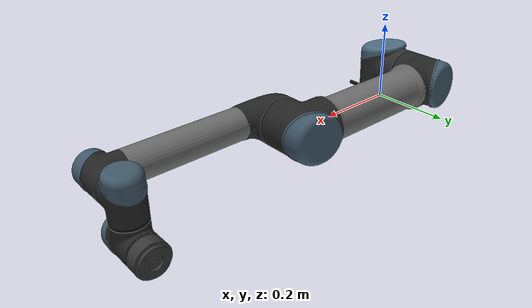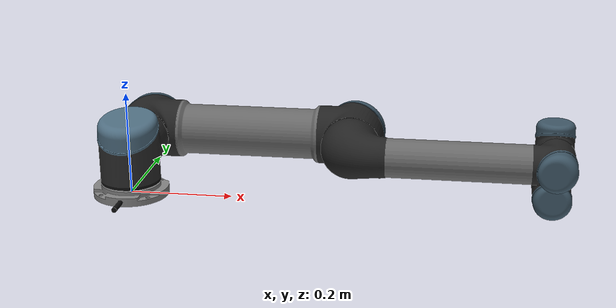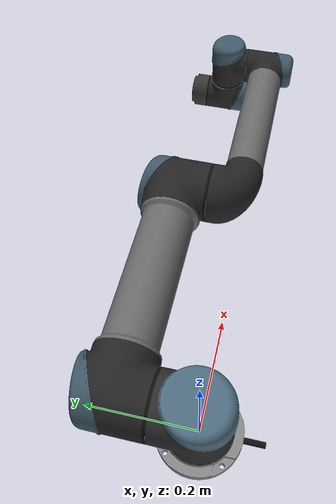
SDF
<sdf version='1.11'>
  <model name='ur'>
    <joint name='base_joint' type='fixed'>
      <pose relative_to='__model__'>0 0 0 0 0 0</pose>
      <parent>world</parent>
      <child>base_link</child>
    </joint>
    <link name='base_link'>
      <pose relative_to='base_joint'>0 0 0 0 0 0</pose>
      <inertial>
        <pose>0 0 0 0 0 0</pose>
        <mass>4</mass>
        <inertia>
          <ixx>0.0044333315599999999</ixx>
          <ixy>0</ixy>
          <ixz>0</ixz>
          <iyy>0.0044333315599999999</iyy>
          <iyz>0</iyz>
          <izz>0.0071999999999999998</izz>
        </inertia>
      </inertial>
      <collision name='base_link_inertia_collision'>
        <pose>0 0 0 0 0 -2.4492935982947059e-16</pose>
        <geometry>
          <mesh>
            <scale>1 1 1</scale>
            <uri>model://ur_description/meshes/ur5/collision/base.stl</uri>
          </mesh>
        </geometry>
      </collision>
      <visual name='base_link_inertia_visual'>
        <pose>0 0 0 0 0 -2.4492935982947059e-16</pose>
        <geometry>
          <mesh>
            <scale>1 1 1</scale>
            <uri>model://ur_description/meshes/ur5/visual/base.dae</uri>
          </mesh>
        </geometry>
      </visual>
    </link>
    <joint name='shoulder_pan_joint' type='revolute'>
      <pose relative_to='base_link'>0 0 0.089159000000000002 0 0 3.1415926535897931</pose>
      <parent>base_link</parent>
      <child>shoulder_link</child>
      <axis>
        <xyz>0 0 1</xyz>
        <limit>
          <lower>-6.2831853071795862</lower>
          <upper>6.2831853071795862</upper>
          <effort>150</effort>
          <velocity>3.1415926535897931</velocity>
        </limit>
        <dynamics>
          <damping>0</damping>
          <friction>0</friction>
          <spring_reference>0</spring_reference>
          <spring_stiffness>0</spring_stiffness>
        </dynamics>
      </axis>
    </joint>
    <link name='shoulder_link'>
      <pose relative_to='shoulder_pan_joint'>0 0 0 0 0 0</pose>
      <inertial>
        <pose>0 -0.0019300000000000001 -0.025610000000000001 0 0 0</pose>
        <mass>3.7000000000000002</mass>
        <inertia>
          <ixx>0.01497235833333333</ixx>
          <ixy>0</ixy>
          <ixz>0</ixz>
          <iyy>0.01497235833333333</iyy>
          <iyz>0</iyz>
          <izz>0.010406250000000001</izz>
        </inertia>
      </inertial>
      <collision name='shoulder_link_collision'>
        <pose>0 0 0 0 0 3.1415926535897931</pose>
        <geometry>
          <mesh>
            <scale>1 1 1</scale>
            <uri>model://ur_description/meshes/ur5/collision/shoulder.stl</uri>
          </mesh>
        </geometry>
      </collision>
      <visual name='shoulder_link_visual'>
        <pose>0 0 0 0 0 3.1415926535897931</pose>
        <geometry>
          <mesh>
            <scale>1 1 1</scale>
            <uri>model://ur_description/meshes/ur5/visual/shoulder.dae</uri>
          </mesh>
        </geometry>
      </visual>
    </link>
    <joint name='shoulder_lift_joint' type='revolute'>
      <pose relative_to='shoulder_link'>0 0 0 1.5707963270000003 0 0</pose>
      <parent>shoulder_link</parent>
      <child>upper_arm_link</child>
      <axis>
        <xyz>0 0 1</xyz>
        <limit>
          <lower>-6.2831853071795862</lower>
          <upper>6.2831853071795862</upper>
          <effort>150</effort>
          <velocity>3.1415926535897931</velocity>
        </limit>
        <dynamics>
          <damping>0</damping>
          <friction>0</friction>
          <spring_reference>0</spring_reference>
          <spring_stiffness>0</spring_stiffness>
        </dynamics>
      </axis>
    </joint>
    <link name='upper_arm_link'>
      <pose relative_to='shoulder_lift_joint'>0 0 0 0 0 0</pose>
      <inertial>
        <pose>-0.21249999999999999 0 0.11336 0 1.5707963267948966 0</pose>
        <mass>8.3930000000000007</mass>
        <inertia>
          <ixx>0.13388583541666671</ixx>
          <ixy>0</ixy>
          <ixz>0</ixz>
          <iyy>0.13388583541666671</iyy>
          <iyz>0</iyz>
          <izz>0.0151074</izz>
        </inertia>
      </inertial>
      <collision name='upper_arm_link_collision'>
        <pose>0 0 0.13585 1.5707963267948959 5.5511151231257827e-17 -1.5707963267948959</pose>
        <geometry>
          <mesh>
            <scale>1 1 1</scale>
            <uri>model://ur_description/meshes/ur5/collision/upperarm.stl</uri>
          </mesh>
        </geometry>
      </collision>
      <visual name='upper_arm_link_visual'>
        <pose>0 0 0.13585 1.5707963267948959 5.5511151231257827e-17 -1.5707963267948959</pose>
        <geometry>
          <mesh>
            <scale>1 1 1</scale>
            <uri>model://ur_description/meshes/ur5/visual/upperarm.dae</uri>
          </mesh>
        </geometry>
      </visual>
    </link>
    <joint name='elbow_joint' type='revolute'>
      <pose relative_to='upper_arm_link'>-0.42499999999999999 0 0 0 0 0</pose>
      <parent>upper_arm_link</parent>
      <child>forearm_link</child>
      <axis>
        <xyz>0 0 1</xyz>
        <limit>
          <lower>-3.1415926535897931</lower>
          <upper>3.1415926535897931</upper>
          <effort>150</effort>
          <velocity>3.1415926535897931</velocity>
        </limit>
        <dynamics>
          <damping>0</damping>
          <friction>0</friction>
          <spring_reference>0</spring_reference>
          <spring_stiffness>0</spring_stiffness>
        </dynamics>
      </axis>
    </joint>
    <link name='forearm_link'>
      <pose relative_to='elbow_joint'>0 0 0 0 0 0</pose>
      <inertial>
        <pose>-0.24224999999999999 0 0.026499999999999999 0 1.5707963267948966 0</pose>
        <mass>2.3300000000000001</mass>
        <inertia>
          <ixx>0.031216803515624999</ixx>
          <ixy>0</ixy>
          <ixz>0</ixz>
          <iyy>0.031216803515624999</iyy>
          <iyz>0</iyz>
          <izz>0.0040949999999999997</izz>
        </inertia>
      </inertial>
      <collision name='forearm_link_collision'>
        <pose>0 0 0.016500000000000001 1.5707963267948959 5.5511151231257827e-17 -1.5707963267948959</pose>
        <geometry>
          <mesh>
            <scale>1 1 1</scale>
            <uri>model://ur_description/meshes/ur5/collision/forearm.stl</uri>
          </mesh>
        </geometry>
      </collision>
      <visual name='forearm_link_visual'>
        <pose>0 0 0.016500000000000001 1.5707963267948959 5.5511151231257827e-17 -1.5707963267948959</pose>
        <geometry>
          <mesh>
            <scale>1 1 1</scale>
            <uri>model://ur_description/meshes/ur5/visual/forearm.dae</uri>
          </mesh>
        </geometry>
      </visual>
    </link>
    <joint name='wrist_1_joint' type='revolute'>
      <pose relative_to='forearm_link'>-0.39224999999999999 0 0.10915 0 0 0</pose>
      <parent>forearm_link</parent>
      <child>wrist_1_link</child>
      <axis>
        <xyz>0 0 1</xyz>
        <limit>
          <lower>-6.2831853071795862</lower>
          <upper>6.2831853071795862</upper>
          <effort>28</effort>
          <velocity>3.1415926535897931</velocity>
        </limit>
        <dynamics>
          <damping>0</damping>
          <friction>0</friction>
          <spring_reference>0</spring_reference>
          <spring_stiffness>0</spring_stiffness>
        </dynamics>
      </axis>
    </joint>
    <link name='wrist_1_link'>
      <pose relative_to='wrist_1_joint'>0 0 0 0 0 0</pose>
      <inertial>
        <pose>0 -0.01634 -0.0018 0 0 0</pose>
        <mass>1.2190000000000001</mass>
        <inertia>
          <ixx>0.0020138895833333331</ixx>
          <ixy>0</ixy>
          <ixz>0</ixz>
          <iyy>0.0020138895833333331</iyy>
          <iyz>0</iyz>
          <izz>0.0021941999999999999</izz>
        </inertia>
      </inertial>
      <collision name='wrist_1_link_collision'>
        <pose>0 0 -0.092999999999999999 1.5707963267948959 0 0</pose>
        <geometry>
          <mesh>
            <scale>1 1 1</scale>
            <uri>model://ur_description/meshes/ur5/collision/wrist1.stl</uri>
          </mesh>
        </geometry>
      </collision>
      <visual name='wrist_1_link_visual'>
        <pose>0 0 -0.092999999999999999 1.5707963267948959 0 0</pose>
        <geometry>
          <mesh>
            <scale>1 1 1</scale>
            <uri>model://ur_description/meshes/ur5/visual/wrist1.dae</uri>
          </mesh>
        </geometry>
      </visual>
    </link>
    <joint name='wrist_2_joint' type='revolute'>
      <pose relative_to='wrist_1_link'>0 -0.094649999999999998 -1.941303950897609e-11 1.5707963270000003 0 0</pose>
      <parent>wrist_1_link</parent>
      <child>wrist_2_link</child>
      <axis>
        <xyz>0 0 1</xyz>
        <limit>
          <lower>-6.2831853071795862</lower>
          <upper>6.2831853071795862</upper>
          <effort>28</effort>
          <velocity>3.1415926535897931</velocity>
        </limit>
        <dynamics>
          <damping>0</damping>
          <friction>0</friction>
          <spring_reference>0</spring_reference>
          <spring_stiffness>0</spring_stiffness>
        </dynamics>
      </axis>
    </joint>
    <link name='wrist_2_link'>
      <pose relative_to='wrist_2_joint'>0 0 0 0 0 0</pose>
      <inertial>
        <pose>0 0.01634 -0.0018 0 0 0</pose>
        <mass>1.2190000000000001</mass>
        <inertia>
          <ixx>0.001831039583333333</ixx>
          <ixy>0</ixy>
          <ixz>0</ixz>
          <iyy>0.001831039583333333</iyy>
          <iyz>0</iyz>
          <izz>0.0021941999999999999</izz>
        </inertia>
      </inertial>
      <collision name='wrist_2_link_collision'>
        <pose>0 0 -0.095000000000000001 0 0 0</pose>
        <geometry>
          <mesh>
            <scale>1 1 1</scale>
            <uri>model://ur_description/meshes/ur5/collision/wrist2.stl</uri>
          </mesh>
        </geometry>
      </collision>
      <visual name='wrist_2_link_visual'>
        <pose>0 0 -0.095000000000000001 0 0 0</pose>
        <geometry>
          <mesh>
            <scale>1 1 1</scale>
            <uri>model://ur_description/meshes/ur5/visual/wrist2.dae</uri>
          </mesh>
        </geometry>
      </visual>
    </link>
    <joint name='wrist_3_joint' type='revolute'>
      <pose relative_to='wrist_2_link'>0 0.082299999999999998 -1.6880012166811751e-11 -1.5707963270000003 1.2246467991473527e-16 -1.224646799147353e-16</pose>
      <parent>wrist_2_link</parent>
      <child>wrist_3_link</child>
      <axis>
        <xyz>0 0 1</xyz>
        <limit>
          <lower>-6.2831853071795862</lower>
          <upper>6.2831853071795862</upper>
          <effort>28</effort>
          <velocity>3.1415926535897931</velocity>
        </limit>
        <dynamics>
          <damping>0</damping>
          <friction>0</friction>
          <spring_reference>0</spring_reference>
          <spring_stiffness>0</spring_stiffness>
        </dynamics>
      </axis>
    </joint>
    <link name='wrist_3_link'>
      <pose relative_to='wrist_3_joint'>0 0 0 0 0 0</pose>
      <inertial>
        <pose>0 0 -0.0011590000000000001 0 0 0</pose>
        <mass>0.18790000000000001</mass>
        <inertia>
          <ixx>8.0624758333333322e-05</ixx>
          <ixy>0</ixy>
          <ixz>0</ixz>
          <iyy>8.0624758333333322e-05</iyy>
          <iyz>0</iyz>
          <izz>0.00013211718749999999</izz>
        </inertia>
      </inertial>
      <collision name='wrist_3_link_collision'>
        <pose>0 0 -0.081799999999999998 1.5707963267948959 0 0</pose>
        <geometry>
          <mesh>
            <scale>1 1 1</scale>
            <uri>model://ur_description/meshes/ur5/collision/wrist3.stl</uri>
          </mesh>
        </geometry>
      </collision>
      <visual name='wrist_3_link_visual'>
        <pose>0 0 -0.081799999999999998 1.5707963267948959 0 0</pose>
        <geometry>
          <mesh>
            <scale>1 1 1</scale>
            <uri>model://ur_description/meshes/ur5/visual/wrist3.dae</uri>
          </mesh>
        </geometry>
      </visual>
    </link>
    <frame name='base_link-base_fixed_joint' attached_to='base_link'>
      <pose>0 0 0 0 0 3.1415926535897931</pose>
    </frame>
    <frame name='base' attached_to='base_link-base_fixed_joint'>
      <pose>0 0 0 0 0 0</pose>
    </frame>
    <frame name='base_link-base_link_inertia' attached_to='base_link'>
      <pose>0 0 0 0 0 3.1415926535897931</pose>
    </frame>
    <frame name='base_link_inertia' attached_to='base_link-base_link_inertia'>
      <pose>0 0 0 0 0 0</pose>
    </frame>
    <frame name='flange-tool0' attached_to='flange'>
      <pose>0 0 0 1.5707963267948959 -5.5511151231257827e-17 1.5707963267948959</pose>
    </frame>
    <frame name='tool0' attached_to='flange-tool0'>
      <pose>0 0 0 0 0 0</pose>
    </frame>
    <frame name='wrist_3-flange' attached_to='wrist_3_link'>
      <pose>0 0 0 -1.5707963267948957 -1.5707963267948966 0</pose>
    </frame>
    <frame name='flange' attached_to='wrist_3-flange'>
      <pose>0 0 0 0 0 0</pose>
    </frame>
    <frame name='wrist_3_link-ft_frame' attached_to='wrist_3_link'>
      <pose>0 0 0 3.1415926535897931 0 0</pose>
    </frame>
    <frame name='ft_frame' attached_to='wrist_3_link-ft_frame'>
      <pose>0 0 0 0 0 0</pose>
    </frame>
  </model>
</sdf>
